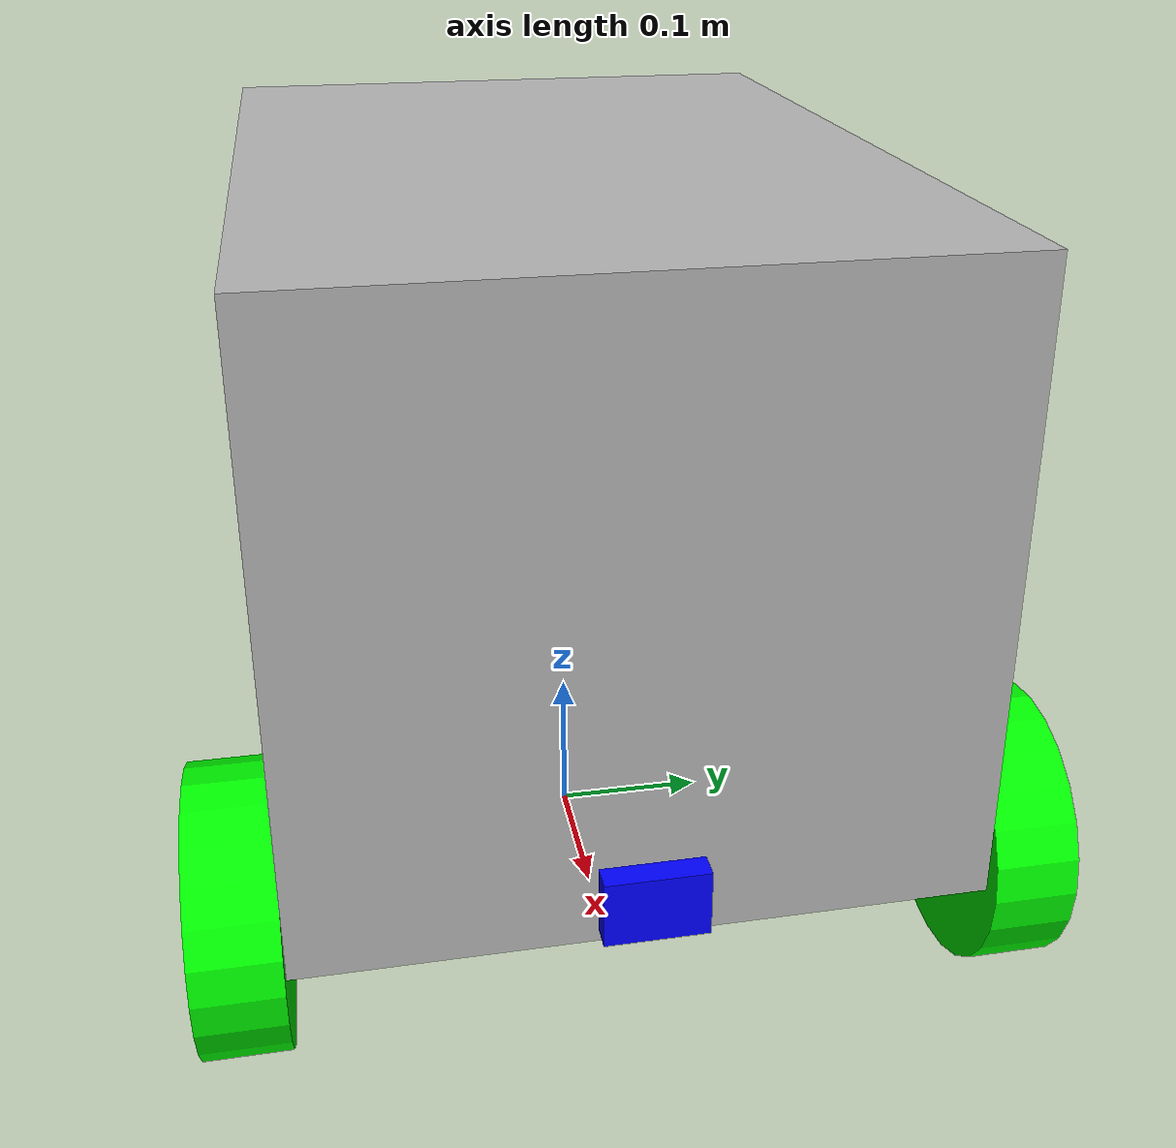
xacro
<?xml version="1.0"?>
<robot name="my_robot" xmlns:xacro="http://www.ros.org/wiki/xacro">

  <xacro:include filename="inertial_macros.xacro" />

  <material name="grey">
    <color rgba="0.7 0.7 0.7 1" />
  </material>
  <material name="white">
    <color rgba="1 1 1 1" />
  </material>
  <material name="green">
    <color rgba="0 1 0 1" />
  </material>
  <material name="blue">
    <color rgba="0 0 1 1" />
  </material>

  <link name="base_footprint"/>

  <link name="base_link">
    <visual>
      <geometry>
        <box size="0.58 0.4 0.38" />
      </geometry>
      <origin xyz="0 0 0.19" rpy="0 0 0" />
      <material name="grey" />
    </visual>
    <collision>
      <origin xyz="0.29 0 0.19" rpy="0 0 0" />
      <geometry>
        <box size="0.58 0.4 0.38" />
      </geometry>
    </collision>
    <xacro:inertial_box mass="8" x="0.58" y="0.4" z="0.38">
      <origin xyz="0.29 0 0.19" rpy="0 0 0"/>
    </xacro:inertial_box>
  </link>

  <link name="left_wheel">
    <visual>
      <geometry>
        <cylinder radius="0.083" length="0.05" />
      </geometry>
      <origin xyz="0 0 0" rpy="1.57 0 0" />
      <material name="green" />
    </visual>
    <collision>
      <geometry>
        <sphere radius="0.083"/>
      </geometry>
      <origin xyz="0 0 0" rpy="1.57 0 0" />
    </collision>
    <xacro:inertial_cylinder mass="2" length="0.05" radius="0.083">
      <origin xyz="0 0 0" rpy="1.57 0 0"/>
    </xacro:inertial_cylinder>
  </link>

  <link name="right_wheel">
    <visual>
      <geometry>
        <cylinder radius="0.083" length="0.05" />
      </geometry>
      <origin xyz="0 0 0" rpy="1.57 0 0" />
      <material name="green" />
    </visual>
    <collision>
      <geometry>
        <sphere radius="0.083"/>
      </geometry>
      <origin xyz="0 0 0" rpy="1.57 0 0" />
    </collision>
    <xacro:inertial_cylinder mass="2" length="0.05" radius="0.083">
      <origin xyz="0 0 0" rpy="1.57 0 0"/>
    </xacro:inertial_cylinder>
  </link>

  <link name="caster_wheel">
    <visual>
      <geometry>
        <sphere radius="0.04" />
      </geometry>
      <origin xyz="0 0 0" rpy="1.57 0 0" />
      <material name="green" />
    </visual>
    <collision>
      <geometry>
        <sphere radius="0.04"/>
      </geometry>
      <origin xyz="0 0 0" rpy="0 0 0" />
    </collision>
    <xacro:inertial_cylinder mass="1" length="0.05" radius="0.04">
      <origin xyz="0 0 0" rpy="0 0 0"/>
    </xacro:inertial_cylinder>
  </link>

   <link name="ultrasonic_sensor">
    <visual>
      <geometry>
        <box size = "0.015 0.06 0.04" />
      </geometry>
      <origin xyz="0 0 0" rpy="0 0 0" />
      <material name="blue" />
    </visual>
    <collision>
      <geometry>
        <box size = "0.015 0.06 0.04" />
      </geometry>
      <origin xyz="0 0 0" rpy="0 0 0" />
    </collision>
    <xacro:inertial_box mass="0.05" x="0.015" y="0.06" z="0.04">
      <origin xyz="0 0 0" rpy="0 0 0"/>
    </xacro:inertial_box>
  </link>

  <joint name="base_joint" type="fixed">
    <parent link="base_footprint"/>
    <child link="base_link" />
    <origin xyz="0 0 0.108" rpy="0 0 0" />
  </joint>

  <joint name="ultrasonic_sensor_joint" type="fixed">
    <parent link="base_link"/>
    <child link="ultrasonic_sensor" />
    <origin xyz="0.3 0 0.03" rpy="0 0 0" />
  </joint>

  <joint name="left_wheel_joint" type="continuous">
    <parent link="base_link"/>
    <child link="left_wheel"/>
    <origin xyz="0.22 0.225 0" rpy="0 0 0" />
    <axis xyz="0 1 0" />
  </joint>

  <joint name="right_wheel_joint" type="continuous">
    <parent link="base_link"/>
    <child link="right_wheel"/>
    <origin xyz="0.22 -0.225 0" rpy="0 0 0" />
    <axis xyz="0 1 0" />
  </joint>

  <joint name="caster_wheel_joint" type="fixed">
    <parent link="base_link"/>
    <child link="caster_wheel"/>
    <origin xyz="-0.22 0 -0.08" rpy="0 0 0"/>
  </joint>

</robot>
